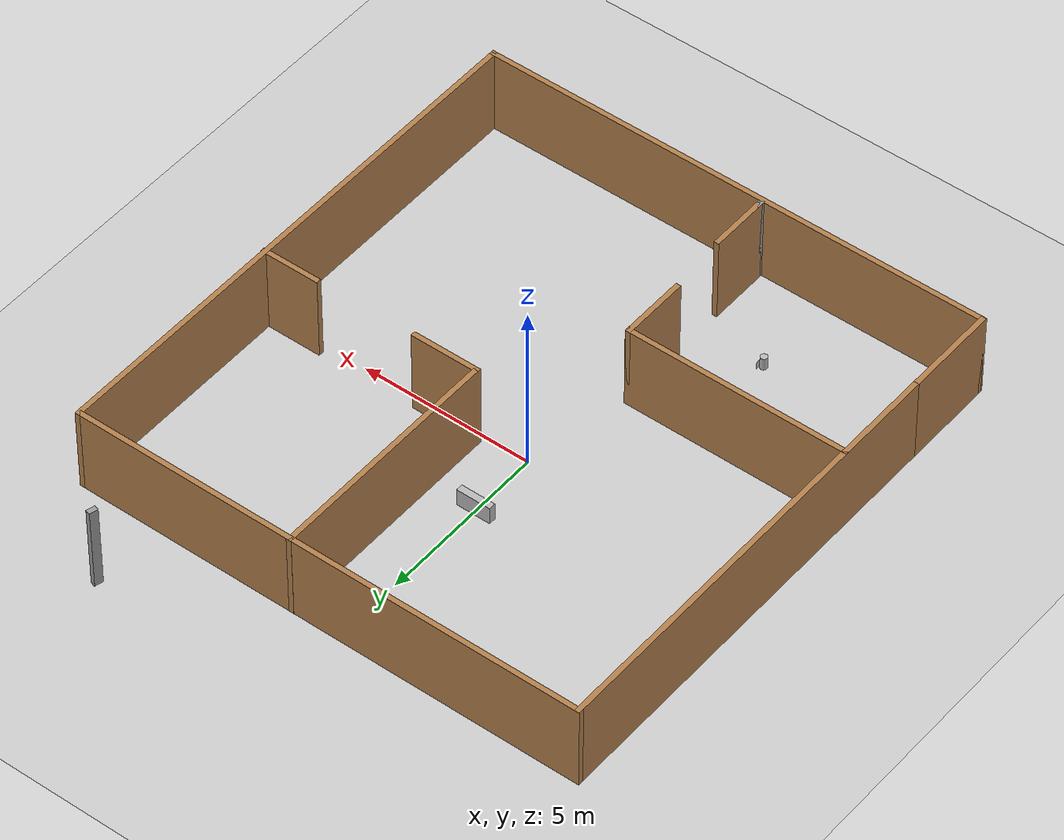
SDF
<sdf version="1.7">
 <world name="default">
  <include><name>aruco_marker1</name><uri>model://aruco_marker_box</uri><pose>0 2 0 0 -0 -1.57</pose></include>
  <include>
   <name>aruco_marker2</name>
   <uri>model://aruco_marker_cylinder</uri>
   <pose>-2.5 -6 0 0 -0 0</pose>
  </include>
  <light name="sun" type="directional">
   <pose>0 0 10 0 -0 0</pose>
   <diffuse>0.8 0.8 0.8 1</diffuse>
   <specular>0.2 0.2 0.2 1</specular>
   <attenuation>
    <range>1000</range>
    <constant>0.9</constant>
    <linear>0.01</linear>
    <quadratic>0.001</quadratic>
   </attenuation>
   <direction>-0.5 0.1 -0.9</direction>
   <spot><inner_angle>0</inner_angle><outer_angle>0</outer_angle><falloff>0</falloff></spot>
  </light>
  <model name="ground_plane">
   <static>1</static>
   <link name="link">
    <collision name="collision">
     <geometry><plane><normal>0 0 1</normal><size>100 100</size></plane></geometry>
     <surface><friction><ode><mu>100</mu><mu2>50</mu2></ode></friction></surface>
    </collision>
    <visual name="visual">
     <cast_shadows>0</cast_shadows>
     <geometry><plane><normal>0 0 1</normal><size>100 100</size></plane></geometry>
     <material>
      <script><uri>file://media/materials/scripts/gazebo.material</uri><name>Gazebo/Grey</name></script>
     </material>
    </visual>
   </link>
  </model>
  <gravity>0 0 -9.8</gravity>
  <magnetic_field>6e-06 2.3e-05 -4.2e-05</magnetic_field>
  <atmosphere type="adiabatic"/>
  <physics type="ode">
   <max_step_size>0.001</max_step_size>
   <real_time_factor>1</real_time_factor>
   <real_time_update_rate>1000</real_time_update_rate>
  </physics>
  <scene><ambient>0.4 0.4 0.4 1</ambient><background>0.7 0.7 0.7 1</background><shadows>1</shadows></scene>
  <spherical_coordinates>
   <surface_model>EARTH_WGS84</surface_model>
   <latitude_deg>0</latitude_deg>
   <longitude_deg>0</longitude_deg>
   <elevation>0</elevation>
   <heading_deg>0</heading_deg>
  </spherical_coordinates>
  <model name="WORLD1">
   <pose>0.401039 0.39378 0 0 -0 0</pose>
   <link name="Wall_1">
    <collision name="Wall_1_Collision">
     <geometry><box><size>3 0.15 2.5</size></box></geometry>
     <pose>0 0 1.25 0 -0 0</pose>
    </collision>
    <visual name="Wall_1_Visual">
     <pose>0 0 1.25 0 -0 0</pose>
     <geometry><box><size>3 0.15 2.5</size></box></geometry>
     <material>
      <script><uri>file://media/materials/scripts/gazebo.material</uri><name>Gazebo/Wood</name></script>
      <ambient>1 1 1 1</ambient>
     </material>
     <meta><layer>0</layer></meta>
    </visual>
    <pose>-7.43274 -7.48933 0 0 -0 -1.5708</pose>
   </link>
   <link name="Wall_12">
    <collision name="Wall_12_Collision">
     <geometry><box><size>7 0.15 2.5</size></box></geometry>
     <pose>0 0 1.25 0 -0 0</pose>
    </collision>
    <visual name="Wall_12_Visual">
     <pose>0 0 1.25 0 -0 0</pose>
     <geometry><box><size>7 0.15 2.5</size></box></geometry>
     <material>
      <script><uri>file://media/materials/scripts/gazebo.material</uri><name>Gazebo/Wood</name></script>
      <ambient>1 1 1 1</ambient>
     </material>
     <meta><layer>0</layer></meta>
    </visual>
    <pose>0.978301 3.26295 0 0 -0 -1.5708</pose>
   </link>
   <link name="Wall_13">
    <collision name="Wall_13_Collision">
     <geometry><box><size>2 0.15 2.5</size></box></geometry>
     <pose>0 0 1.25 0 -0 0</pose>
    </collision>
    <visual name="Wall_13_Visual">
     <pose>0 0 1.25 0 -0 0</pose>
     <geometry><box><size>2 0.15 2.5</size></box></geometry>
     <material>
      <script><uri>file://media/materials/scripts/gazebo.material</uri><name>Gazebo/Wood</name></script>
      <ambient>1 1 1 1</ambient>
     </material>
     <meta><layer>0</layer></meta>
    </visual>
    <pose>1.9033 -0.162052 0 0 -0 0</pose>
   </link>
   <link name="Wall_15">
    <collision name="Wall_15_Collision">
     <geometry><box><size>1.75 0.15 2.5</size></box></geometry>
     <pose>0 0 1.25 0 -0 0</pose>
    </collision>
    <visual name="Wall_15_Visual">
     <pose>0 0 1.25 0 -0 0</pose>
     <geometry><box><size>1.75 0.15 2.5</size></box></geometry>
     <material>
      <script><uri>file://media/materials/scripts/gazebo.material</uri><name>Gazebo/Wood</name></script>
      <ambient>1 1 1 1</ambient>
     </material>
     <meta><layer>0</layer></meta>
    </visual>
    <pose>6.63274 -0.117345 0 0 -0 0</pose>
   </link>
   <link name="Wall_17">
    <collision name="Wall_17_Collision">
     <geometry><box><size>6.5 0.15 2.5</size></box></geometry>
     <pose>0 0 1.25 0 -0 0</pose>
    </collision>
    <visual name="Wall_17_Visual">
     <pose>0 0 1.25 0 -0 0</pose>
     <geometry><box><size>6.5 0.15 2.5</size></box></geometry>
     <material>
      <script><uri>file://media/materials/scripts/gazebo.material</uri><name>Gazebo/Wood</name></script>
      <ambient>1 1 1 1</ambient>
     </material>
     <meta><layer>0</layer></meta>
    </visual>
    <pose>-4.23989 -3.42925 0 0 -0 0</pose>
   </link>
   <link name="Wall_18">
    <collision name="Wall_18_Collision">
     <geometry><box><size>2 0.15 2.5</size></box></geometry>
     <pose>0 0 1.25 0 -0 0</pose>
    </collision>
    <visual name="Wall_18_Visual">
     <pose>0 0 1.25 0 -0 0</pose>
     <geometry><box><size>2 0.15 2.5</size></box></geometry>
     <material>
      <script><uri>file://media/materials/scripts/gazebo.material</uri><name>Gazebo/Wood</name></script>
      <ambient>1 1 1 1</ambient>
     </material>
     <meta><layer>0</layer></meta>
    </visual>
    <pose>-1.06489 -4.35425 0 0 -0 -1.5708</pose>
   </link>
   <link name="Wall_2">
    <collision name="Wall_2_Collision">
     <geometry><box><size>15 0.15 2.5</size></box></geometry>
     <pose>0 0 1.25 0 -0 0</pose>
    </collision>
    <visual name="Wall_2_Visual">
     <pose>0 0 1.25 0 -0 0</pose>
     <geometry><box><size>15 0.15 2.5</size></box></geometry>
     <material>
      <script><uri>file://media/materials/scripts/gazebo.material</uri><name>Gazebo/Wood</name></script>
      <ambient>1 1 1 1</ambient>
     </material>
     <meta><layer>0</layer></meta>
    </visual>
    <pose>-0.007743 -8.91433 0 0 -0 0</pose>
   </link>
   <link name="Wall_20">
    <collision name="Wall_20_Collision">
     <geometry><box><size>1.75 0.15 2.5</size></box></geometry>
     <pose>0 0 1.25 0 -0 0</pose>
    </collision>
    <visual name="Wall_20_Visual">
     <pose>0 0 1.25 0 -0 0</pose>
     <geometry><box><size>1.75 0.15 2.5</size></box></geometry>
     <material>
      <script><uri>file://media/materials/scripts/gazebo.material</uri><name>Gazebo/Wood</name></script>
      <ambient>1 1 1 1</ambient>
     </material>
     <meta><layer>0</layer></meta>
    </visual>
    <pose>-0.927181 -7.90411 0 0 -0 -1.5708</pose>
   </link>
   <link name="Wall_24">
    <collision name="Wall_24_Collision">
     <geometry><box><size>0.25 0.15 2.5</size></box></geometry>
     <pose>0 0 1.25 0 -0 0</pose>
    </collision>
    <visual name="Wall_24_Visual">
     <pose>0 0 1.25 0 -0 0</pose>
     <geometry><box><size>0.25 0.15 2.5</size></box></geometry>
     <material>
      <script><uri>file://media/materials/scripts/gazebo.material</uri><name>Gazebo/Grey</name></script>
      <ambient>1 1 1 1</ambient>
     </material>
     <meta><layer>0</layer></meta>
    </visual>
    <pose>-0.927181 -8.75411 0 0 -0 -1.5708</pose>
   </link>
   <link name="Wall_3">
    <collision name="Wall_3_Collision">
     <geometry><box><size>15.75 0.15 2.5</size></box></geometry>
     <pose>0 0 1.25 0 -0 0</pose>
    </collision>
    <visual name="Wall_3_Visual">
     <pose>0 0 1.25 0 -0 0</pose>
     <geometry><box><size>15.75 0.15 2.5</size></box></geometry>
     <material>
      <script><uri>file://media/materials/scripts/gazebo.material</uri><name>Gazebo/Wood</name></script>
      <ambient>1 1 1 1</ambient>
     </material>
     <meta><layer>0</layer></meta>
    </visual>
    <pose>7.41726 -1.11433 0 0 -0 1.5708</pose>
   </link>
   <link name="Wall_4">
    <collision name="Wall_4_Collision">
     <geometry><box><size>15 0.15 2.5</size></box></geometry>
     <pose>0 0 1.25 0 -0 0</pose>
    </collision>
    <visual name="Wall_4_Visual">
     <pose>0 0 1.25 0 -0 0</pose>
     <geometry><box><size>15 0.15 2.5</size></box></geometry>
     <material>
      <script><uri>file://media/materials/scripts/gazebo.material</uri><name>Gazebo/Wood</name></script>
      <ambient>1 1 1 1</ambient>
     </material>
     <meta><layer>0</layer></meta>
    </visual>
    <pose>-0.007743 6.68567 0 0 -0 3.14159</pose>
   </link>
   <link name="Wall_5">
    <collision name="Wall_5_Collision">
     <geometry><box><size>13 0.15 2.5</size></box></geometry>
     <pose>0 0 1.25 0 -0 0</pose>
    </collision>
    <visual name="Wall_5_Visual">
     <pose>0 0 1.25 0 -0 0</pose>
     <geometry><box><size>13 0.15 2.5</size></box></geometry>
     <material>
      <script><uri>file://media/materials/scripts/gazebo.material</uri><name>Gazebo/Wood</name></script>
      <ambient>1 1 1 1</ambient>
     </material>
     <meta><layer>0</layer></meta>
    </visual>
    <pose>-7.43274 0.260666 0 0 -0 -1.5708</pose>
   </link>
   <link name="Wall_9">
    <collision name="Wall_9_Collision">
     <geometry><box><size>0.25 0.15 2.5</size></box></geometry>
     <pose>0 0 1.25 0 -0 0</pose>
    </collision>
    <visual name="Wall_9_Visual">
     <pose>0 0 1.25 0 -0 0</pose>
     <geometry><box><size>0.25 0.15 2.5</size></box></geometry>
     <material>
      <script><uri>file://media/materials/scripts/gazebo.material</uri><name>Gazebo/Grey</name></script>
      <ambient>1 1 1 1</ambient>
     </material>
     <meta><layer>0</layer></meta>
    </visual>
    <pose>5.14505 8.84918 0 0 -0 -1.8326</pose>
   </link>
   <static>1</static>
  </model>
 </world>
</sdf>

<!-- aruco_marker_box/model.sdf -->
<sdf version="1.6">
  <model name="aruco_marker">
    <link name="link">
      <inertial>
        <pose>0 0 0 0 0 0</pose>
        <mass>1</mass>
        <inertia>
          <ixx>0.083</ixx>
          <ixy>0.0</ixy>
          <ixz>0.0</ixz>
          <iyy>0.083</iyy>
          <iyz>0.0</iyz>
          <izz>0.083</izz>
        </inertia>
      </inertial>
      <visual name="front_visual">
        <pose>0.1005 0 0.15 0 0 0</pose>
        <geometry>
          <box>
            <size>0.0001 0.50 0.50</size>
          </box>
        </geometry>
        <material>
          <script>
            <uri>model://aruco_marker_box/materials/scripts</uri>
            <uri>model://aruco_marker_box/materials/textures</uri>
            <name>Marker</name>
          </script>
        </material>
      </visual>
      <!-- Hide the marker from the back -->
      <visual name="rear_visual">
        <pose>-0.00005 0 0 0 0 0</pose>
        <geometry>
          <box>
            <size>0.20 1.0 1.0</size>
          </box>
        </geometry>
      </visual>
      <collision name="collision">
        <pose>0 0 0 0 0 0</pose>
        <geometry>
          <box>
            <size>0.20 0.40 0.50</size>
          </box>
        </geometry>
      </collision>
    </link>
  </model>
</sdf>

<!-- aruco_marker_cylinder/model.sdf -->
<sdf version="1.6">
  <model name="aruco_marker">
    <link name="link">
      <inertial>
        <pose>0 0 0 0 0 0</pose>
        <mass>1</mass>
        <inertia>
          <ixx>0.083</ixx>
          <ixy>0.0</ixy>
          <ixz>0.0</ixz>
          <iyy>0.083</iyy>
          <iyz>0.0</iyz>
          <izz>0.083</izz>
        </inertia>
      </inertial>
      <visual name="front_visual">
        <pose>0.105 0 0.05 0 0 0</pose>
        <geometry>
          <box>
            <size>0.0001 0.30 0.30</size>
          </box>
        </geometry>
        <material>
          <script>
            <uri>model://aruco_marker_cylinder/materials/scripts</uri>
            <uri>model://aruco_marker_cylinder/materials/textures</uri>
            <name>Marker2</name>
          </script>
        </material>
      </visual>
      <!-- Hide the marker from the back -->
      <visual name="rear_visual">
        <pose>0 0 0 0 0 0</pose>
        <geometry>
            <cylinder>
              <radius>0.1</radius>
              <length> 0.7 </length>
            </cylinder>
        </geometry>
      </visual>
      <collision name="collision">
        <pose>0 0 0 0 0 0</pose>
        <geometry>
            <cylinder>
              <radius>0.1</radius>
              <length>0.7</length>
            </cylinder>
        </geometry>
      </collision>
    </link>
  </model>
</sdf>
เขียนถึง วรเมธี จิตนากร
